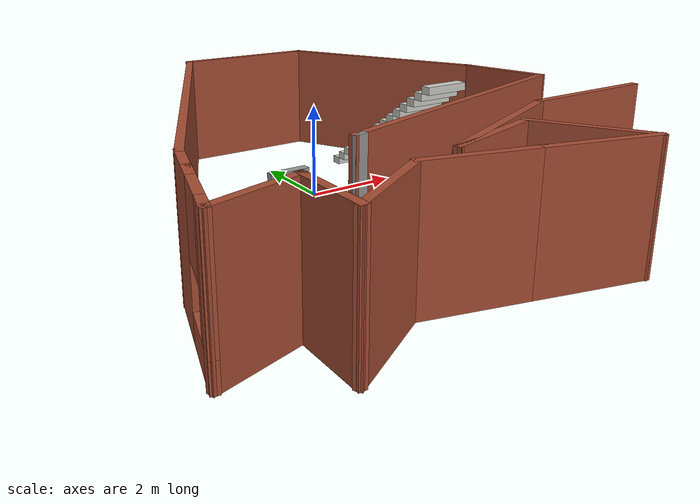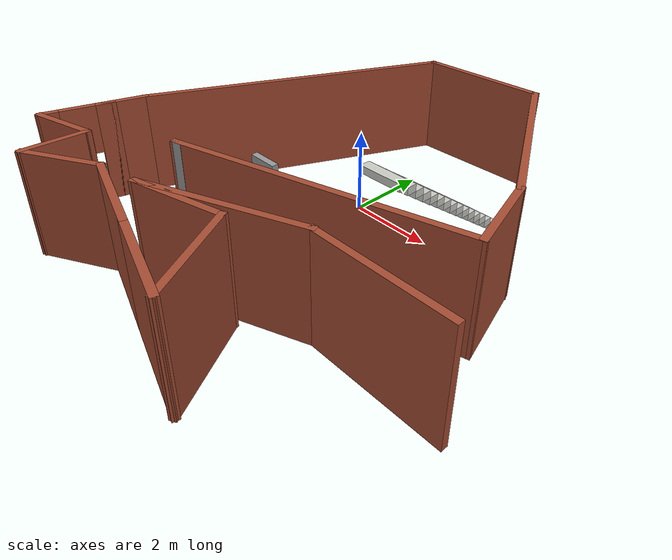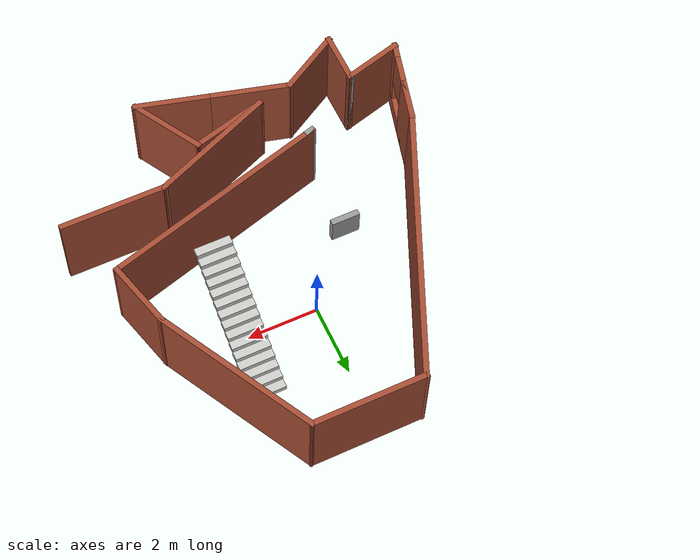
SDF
<?xml version='1.0'?>
<sdf version='1.7'>
  <model name='wall'>
    <pose>0.322681 -1.26251 0 0 -0 0</pose>
    <link name='Stairs_0'>
      <visual name='Stairs_0_Visual_0'>
        <pose>1.86382 2.90884 0.083333 0 -0 0</pose>
        <geometry>
          <box>
            <size>1 0.233333 0.166667</size>
          </box>
        </geometry>
        <material>
          <script>
            <uri>file://media/materials/scripts/gazebo.material</uri>
            <name>Gazebo/CeilingTiled</name>
          </script>
          <ambient>1 1 1 1</ambient>
        </material>
        <meta>
          <layer>0</layer>
        </meta>
      </visual>
      <collision name='Stairs_0_Collision_0'>
        <geometry>
          <box>
            <size>1 0.233333 0.166667</size>
          </box>
        </geometry>
        <pose>1.86382 2.90884 0.083333 0 -0 0</pose>
      </collision>
      <visual name='Stairs_0_Visual_1'>
        <pose>1.86382 2.67551 0.25 0 -0 0</pose>
        <geometry>
          <box>
            <size>1 0.233333 0.166667</size>
          </box>
        </geometry>
        <material>
          <script>
            <uri>file://media/materials/scripts/gazebo.material</uri>
            <name>Gazebo/CeilingTiled</name>
          </script>
          <ambient>1 1 1 1</ambient>
        </material>
        <meta>
          <layer>0</layer>
        </meta>
      </visual>
      <collision name='Stairs_0_Collision_1'>
        <geometry>
          <box>
            <size>1 0.233333 0.166667</size>
          </box>
        </geometry>
        <pose>1.86382 2.67551 0.25 0 -0 0</pose>
      </collision>
      <visual name='Stairs_0_Visual_2'>
        <pose>1.86382 2.44218 0.416667 0 -0 0</pose>
        <geometry>
          <box>
            <size>1 0.233333 0.166667</size>
          </box>
        </geometry>
        <material>
          <script>
            <uri>file://media/materials/scripts/gazebo.material</uri>
            <name>Gazebo/CeilingTiled</name>
          </script>
          <ambient>1 1 1 1</ambient>
        </material>
        <meta>
          <layer>0</layer>
        </meta>
      </visual>
      <collision name='Stairs_0_Collision_2'>
        <geometry>
          <box>
            <size>1 0.233333 0.166667</size>
          </box>
        </geometry>
        <pose>1.86382 2.44218 0.416667 0 -0 0</pose>
      </collision>
      <visual name='Stairs_0_Visual_3'>
        <pose>1.86382 2.20884 0.583333 0 -0 0</pose>
        <geometry>
          <box>
            <size>1 0.233333 0.166667</size>
          </box>
        </geometry>
        <material>
          <script>
            <uri>file://media/materials/scripts/gazebo.material</uri>
            <name>Gazebo/CeilingTiled</name>
          </script>
          <ambient>1 1 1 1</ambient>
        </material>
        <meta>
          <layer>0</layer>
        </meta>
      </visual>
      <collision name='Stairs_0_Collision_3'>
        <geometry>
          <box>
            <size>1 0.233333 0.166667</size>
          </box>
        </geometry>
        <pose>1.86382 2.20884 0.583333 0 -0 0</pose>
      </collision>
      <visual name='Stairs_0_Visual_4'>
        <pose>1.86382 1.97551 0.75 0 -0 0</pose>
        <geometry>
          <box>
            <size>1 0.233333 0.166667</size>
          </box>
        </geometry>
        <material>
          <script>
            <uri>file://media/materials/scripts/gazebo.material</uri>
            <name>Gazebo/CeilingTiled</name>
          </script>
          <ambient>1 1 1 1</ambient>
        </material>
        <meta>
          <layer>0</layer>
        </meta>
      </visual>
      <collision name='Stairs_0_Collision_4'>
        <geometry>
          <box>
            <size>1 0.233333 0.166667</size>
          </box>
        </geometry>
        <pose>1.86382 1.97551 0.75 0 -0 0</pose>
      </collision>
      <visual name='Stairs_0_Visual_5'>
        <pose>1.86382 1.74218 0.916667 0 -0 0</pose>
        <geometry>
          <box>
            <size>1 0.233333 0.166667</size>
          </box>
        </geometry>
        <material>
          <script>
            <uri>file://media/materials/scripts/gazebo.material</uri>
            <name>Gazebo/CeilingTiled</name>
          </script>
          <ambient>1 1 1 1</ambient>
        </material>
        <meta>
          <layer>0</layer>
        </meta>
      </visual>
      <collision name='Stairs_0_Collision_5'>
        <geometry>
          <box>
            <size>1 0.233333 0.166667</size>
          </box>
        </geometry>
        <pose>1.86382 1.74218 0.916667 0 -0 0</pose>
      </collision>
      <visual name='Stairs_0_Visual_6'>
        <pose>1.86382 1.50884 1.08333 0 -0 0</pose>
        <geometry>
          <box>
            <size>1 0.233333 0.166667</size>
          </box>
        </geometry>
        <material>
          <script>
            <uri>file://media/materials/scripts/gazebo.material</uri>
            <name>Gazebo/CeilingTiled</name>
          </script>
          <ambient>1 1 1 1</ambient>
        </material>
        <meta>
          <layer>0</layer>
        </meta>
      </visual>
      <collision name='Stairs_0_Collision_6'>
        <geometry>
          <box>
            <size>1 0.233333 0.166667</size>
          </box>
        </geometry>
        <pose>1.86382 1.50884 1.08333 0 -0 0</pose>
      </collision>
      <visual name='Stairs_0_Visual_7'>
        <pose>1.86382 1.27551 1.25 0 -0 0</pose>
        <geometry>
          <box>
            <size>1 0.233333 0.166667</size>
          </box>
        </geometry>
        <material>
          <script>
            <uri>file://media/materials/scripts/gazebo.material</uri>
            <name>Gazebo/CeilingTiled</name>
          </script>
          <ambient>1 1 1 1</ambient>
        </material>
        <meta>
          <layer>0</layer>
        </meta>
      </visual>
      <collision name='Stairs_0_Collision_7'>
        <geometry>
          <box>
            <size>1 0.233333 0.166667</size>
          </box>
        </geometry>
        <pose>1.86382 1.27551 1.25 0 -0 0</pose>
      </collision>
      <visual name='Stairs_0_Visual_8'>
        <pose>1.86382 1.04218 1.41667 0 -0 0</pose>
        <geometry>
          <box>
            <size>1 0.233333 0.166667</size>
          </box>
        </geometry>
        <material>
          <script>
            <uri>file://media/materials/scripts/gazebo.material</uri>
            <name>Gazebo/CeilingTiled</name>
          </script>
          <ambient>1 1 1 1</ambient>
        </material>
        <meta>
          <layer>0</layer>
        </meta>
      </visual>
      <collision name='Stairs_0_Collision_8'>
        <geometry>
          <box>
            <size>1 0.233333 0.166667</size>
          </box>
        </geometry>
        <pose>1.86382 1.04218 1.41667 0 -0 0</pose>
      </collision>
      <visual name='Stairs_0_Visual_9'>
        <pose>1.86382 0.808841 1.58333 0 -0 0</pose>
        <geometry>
          <box>
            <size>1 0.233333 0.166667</size>
          </box>
        </geometry>
        <material>
          <script>
            <uri>file://media/materials/scripts/gazebo.material</uri>
            <name>Gazebo/CeilingTiled</name>
          </script>
          <ambient>1 1 1 1</ambient>
        </material>
        <meta>
          <layer>0</layer>
        </meta>
      </visual>
      <collision name='Stairs_0_Collision_9'>
        <geometry>
          <box>
            <size>1 0.233333 0.166667</size>
          </box>
        </geometry>
        <pose>1.86382 0.808841 1.58333 0 -0 0</pose>
      </collision>
      <visual name='Stairs_0_Visual_10'>
        <pose>1.86382 0.575508 1.75 0 -0 0</pose>
        <geometry>
          <box>
            <size>1 0.233333 0.166667</size>
          </box>
        </geometry>
        <material>
          <script>
            <uri>file://media/materials/scripts/gazebo.material</uri>
            <name>Gazebo/CeilingTiled</name>
          </script>
          <ambient>1 1 1 1</ambient>
        </material>
        <meta>
          <layer>0</layer>
        </meta>
      </visual>
      <collision name='Stairs_0_Collision_10'>
        <geometry>
          <box>
            <size>1 0.233333 0.166667</size>
          </box>
        </geometry>
        <pose>1.86382 0.575508 1.75 0 -0 0</pose>
      </collision>
      <visual name='Stairs_0_Visual_11'>
        <pose>1.86382 0.342175 1.91667 0 -0 0</pose>
        <geometry>
          <box>
            <size>1 0.233333 0.166667</size>
          </box>
        </geometry>
        <material>
          <script>
            <uri>file://media/materials/scripts/gazebo.material</uri>
            <name>Gazebo/CeilingTiled</name>
          </script>
          <ambient>1 1 1 1</ambient>
        </material>
        <meta>
          <layer>0</layer>
        </meta>
      </visual>
      <collision name='Stairs_0_Collision_11'>
        <geometry>
          <box>
            <size>1 0.233333 0.166667</size>
          </box>
        </geometry>
        <pose>1.86382 0.342175 1.91667 0 -0 0</pose>
      </collision>
      <visual name='Stairs_0_Visual_12'>
        <pose>1.86382 0.108841 2.08333 0 -0 0</pose>
        <geometry>
          <box>
            <size>1 0.233333 0.166667</size>
          </box>
        </geometry>
        <material>
          <script>
            <uri>file://media/materials/scripts/gazebo.material</uri>
            <name>Gazebo/CeilingTiled</name>
          </script>
          <ambient>1 1 1 1</ambient>
        </material>
        <meta>
          <layer>0</layer>
        </meta>
      </visual>
      <collision name='Stairs_0_Collision_12'>
        <geometry>
          <box>
            <size>1 0.233333 0.166667</size>
          </box>
        </geometry>
        <pose>1.86382 0.108841 2.08333 0 -0 0</pose>
      </collision>
      <visual name='Stairs_0_Visual_13'>
        <pose>1.86382 -0.124492 2.25 0 -0 0</pose>
        <geometry>
          <box>
            <size>1 0.233333 0.166667</size>
          </box>
        </geometry>
        <material>
          <script>
            <uri>file://media/materials/scripts/gazebo.material</uri>
            <name>Gazebo/CeilingTiled</name>
          </script>
          <ambient>1 1 1 1</ambient>
        </material>
        <meta>
          <layer>0</layer>
        </meta>
      </visual>
      <collision name='Stairs_0_Collision_13'>
        <geometry>
          <box>
            <size>1 0.233333 0.166667</size>
          </box>
        </geometry>
        <pose>1.86382 -0.124492 2.25 0 -0 0</pose>
      </collision>
      <visual name='Stairs_0_Visual_14'>
        <pose>1.86382 -0.357825 2.41667 0 -0 0</pose>
        <geometry>
          <box>
            <size>1 0.233333 0.166667</size>
          </box>
        </geometry>
        <material>
          <script>
            <uri>file://media/materials/scripts/gazebo.material</uri>
            <name>Gazebo/CeilingTiled</name>
          </script>
          <ambient>1 1 1 1</ambient>
        </material>
        <meta>
          <layer>0</layer>
        </meta>
      </visual>
      <collision name='Stairs_0_Collision_14'>
        <geometry>
          <box>
            <size>1 0.233333 0.166667</size>
          </box>
        </geometry>
        <pose>1.86382 -0.357825 2.41667 0 -0 0</pose>
      </collision>
    </link>
    <link name='Wall_0'>
      <collision name='Wall_0_Collision'>
        <geometry>
          <box>
            <size>0.3 0.15 2.5</size>
          </box>
        </geometry>
        <pose>0 0 1.25 0 -0 0</pose>
      </collision>
      <visual name='Wall_0_Visual'>
        <pose>0 0 1.25 0 -0 0</pose>
        <geometry>
          <box>
            <size>0.3 0.15 2.5</size>
          </box>
        </geometry>
        <material>
          <script>
            <uri>file://media/materials/scripts/gazebo.material</uri>
            <name>Gazebo/Grey</name>
          </script>
          <ambient>1 1 1 1</ambient>
        </material>
        <meta>
          <layer>0</layer>
        </meta>
      </visual>
      <pose>-1.86513 -2.5169 0 0 -0 -2.87979</pose>
    </link>
    <link name='Wall_1'>
      <collision name='Wall_1_Collision'>
        <geometry>
          <box>
            <size>6.69663 0.15 2.5</size>
          </box>
        </geometry>
        <pose>0 0 1.25 0 -0 0</pose>
      </collision>
      <visual name='Wall_1_Visual'>
        <pose>0 0 1.25 0 -0 0</pose>
        <geometry>
          <box>
            <size>6.69663 0.15 2.5</size>
          </box>
        </geometry>
        <material>
          <script>
            <uri>file://media/materials/scripts/gazebo.material</uri>
            <name>Gazebo/Bricks</name>
          </script>
          <ambient>1 1 1 1</ambient>
        </material>
        <meta>
          <layer>0</layer>
        </meta>
      </visual>
      <pose>1.21243 -1.64631 0 0 -0 0.275362</pose>
    </link>
    <link name='Wall_10'>
      <collision name='Wall_10_Collision'>
        <geometry>
          <box>
            <size>2 0.15 2.5</size>
          </box>
        </geometry>
        <pose>0 0 1.25 0 -0 0</pose>
      </collision>
      <visual name='Wall_10_Visual'>
        <pose>0 0 1.25 0 -0 0</pose>
        <geometry>
          <box>
            <size>2 0.15 2.5</size>
          </box>
        </geometry>
        <material>
          <script>
            <uri>file://media/materials/scripts/gazebo.material</uri>
            <name>Gazebo/Bricks</name>
          </script>
          <ambient>1 1 1 1</ambient>
        </material>
        <meta>
          <layer>0</layer>
        </meta>
      </visual>
      <pose>-2.80276 -4.55519 0 0 -0 0.523599</pose>
    </link>
    <link name='Wall_11'>
      <collision name='Wall_11_Collision'>
        <geometry>
          <box>
            <size>2.25 0.15 2.5</size>
          </box>
        </geometry>
        <pose>0 0 1.25 0 -0 0</pose>
      </collision>
      <visual name='Wall_11_Visual'>
        <pose>0 0 1.25 0 -0 0</pose>
        <geometry>
          <box>
            <size>2.25 0.15 2.5</size>
          </box>
        </geometry>
        <material>
          <script>
            <uri>file://media/materials/scripts/gazebo.material</uri>
            <name>Gazebo/Bricks</name>
          </script>
          <ambient>1 1 1 1</ambient>
        </material>
        <meta>
          <layer>0</layer>
        </meta>
      </visual>
      <pose>-0.987461 -4.36444 0 0 -0 -0.261799</pose>
    </link>
    <link name='Wall_12'>
      <collision name='Wall_12_Collision'>
        <geometry>
          <box>
            <size>2.25 0.15 2.5</size>
          </box>
        </geometry>
        <pose>0 0 1.25 0 -0 0</pose>
      </collision>
      <visual name='Wall_12_Visual'>
        <pose>0 0 1.25 0 -0 0</pose>
        <geometry>
          <box>
            <size>2.25 0.15 2.5</size>
          </box>
        </geometry>
        <material>
          <script>
            <uri>file://media/materials/scripts/gazebo.material</uri>
            <name>Gazebo/Bricks</name>
          </script>
          <ambient>1 1 1 1</ambient>
        </material>
        <meta>
          <layer>0</layer>
        </meta>
      </visual>
      <pose>1.04098 -4.90796 0 0 -0 -0.261799</pose>
    </link>
    <link name='Wall_13'>
      <collision name='Wall_13_Collision'>
        <geometry>
          <box>
            <size>2.25 0.15 2.5</size>
          </box>
        </geometry>
        <pose>0 0 1.25 0 -0 0</pose>
      </collision>
      <visual name='Wall_13_Visual'>
        <pose>0 0 1.25 0 -0 0</pose>
        <geometry>
          <box>
            <size>2.25 0.15 2.5</size>
          </box>
        </geometry>
        <material>
          <script>
            <uri>file://media/materials/scripts/gazebo.material</uri>
            <name>Gazebo/Bricks</name>
          </script>
          <ambient>1 1 1 1</ambient>
        </material>
        <meta>
          <layer>0</layer>
        </meta>
      </visual>
      <pose>1.53021 -4.2704 0 0 -0 2.0944</pose>
    </link>
    <link name='Wall_14'>
      <collision name='Wall_14_Collision'>
        <geometry>
          <box>
            <size>2.25 0.15 2.5</size>
          </box>
        </geometry>
        <pose>0 0 1.25 0 -0 0</pose>
      </collision>
      <visual name='Wall_14_Visual'>
        <pose>0 0 1.25 0 -0 0</pose>
        <geometry>
          <box>
            <size>2.25 0.15 2.5</size>
          </box>
        </geometry>
        <material>
          <script>
            <uri>file://media/materials/scripts/gazebo.material</uri>
            <name>Gazebo/Bricks</name>
          </script>
          <ambient>1 1 1 1</ambient>
        </material>
        <meta>
          <layer>0</layer>
        </meta>
      </visual>
      <pose>-0.009017 -3.63283 0 0 -0 -2.87979</pose>
    </link>
    <link name='Wall_15'>
      <collision name='Wall_15_Collision'>
        <geometry>
          <box>
            <size>3.77408 0.15 2.5</size>
          </box>
        </geometry>
        <pose>0 0 1.25 0 -0 0</pose>
      </collision>
      <visual name='Wall_15_Visual'>
        <pose>0 0 1.25 0 -0 0</pose>
        <geometry>
          <box>
            <size>3.77408 0.15 2.5</size>
          </box>
        </geometry>
        <material>
          <script>
            <uri>file://media/materials/scripts/gazebo.material</uri>
            <name>Gazebo/Bricks</name>
          </script>
          <ambient>1 1 1 1</ambient>
        </material>
        <meta>
          <layer>0</layer>
        </meta>
      </visual>
      <pose>0.651464 -3.21259 0 0 -0 0.39184</pose>
    </link>
    <link name='Wall_16'>
      <collision name='Wall_16_Collision'>
        <geometry>
          <box>
            <size>3 0.15 2.5</size>
          </box>
        </geometry>
        <pose>0 0 1.25 0 -0 0</pose>
      </collision>
      <visual name='Wall_16_Visual'>
        <pose>0 0 1.25 0 -0 0</pose>
        <geometry>
          <box>
            <size>3 0.15 2.5</size>
          </box>
        </geometry>
        <material>
          <script>
            <uri>file://media/materials/scripts/gazebo.material</uri>
            <name>Gazebo/Bricks</name>
          </script>
          <ambient>1 1 1 1</ambient>
        </material>
        <meta>
          <layer>0</layer>
        </meta>
      </visual>
      <pose>3.75117 -2.52059 0 0 -0 0</pose>
    </link>
    <link name='Wall_2'>
      <collision name='Wall_2_Collision'>
        <geometry>
          <box>
            <size>2 0.15 2.5</size>
          </box>
        </geometry>
        <pose>0 0 1.25 0 -0 0</pose>
      </collision>
      <visual name='Wall_2_Visual'>
        <pose>0 0 1.25 0 -0 0</pose>
        <geometry>
          <box>
            <size>2 0.15 2.5</size>
          </box>
        </geometry>
        <material>
          <script>
            <uri>file://media/materials/scripts/gazebo.material</uri>
            <name>Gazebo/Bricks</name>
          </script>
          <ambient>1 1 1 1</ambient>
        </material>
        <meta>
          <layer>0</layer>
        </meta>
      </visual>
      <pose>4.12302 0.137167 0 0 -0 1.8326</pose>
    </link>
    <link name='Wall_3'>
      <collision name='Wall_3_Collision'>
        <geometry>
          <box>
            <size>4.85813 0.15 2.5</size>
          </box>
        </geometry>
        <pose>0 0 1.25 0 -0 0</pose>
      </collision>
      <visual name='Wall_3_Visual'>
        <pose>0 0 1.25 0 -0 0</pose>
        <geometry>
          <box>
            <size>4.85813 0.15 2.5</size>
          </box>
        </geometry>
        <material>
          <script>
            <uri>file://media/materials/scripts/gazebo.material</uri>
            <name>Gazebo/Bricks</name>
          </script>
          <ambient>1 1 1 1</ambient>
        </material>
        <meta>
          <layer>0</layer>
        </meta>
      </visual>
      <pose>2.77186 3.10565 0 0 -0 2.06266</pose>
    </link>
    <link name='Wall_4'>
      <collision name='Wall_4_Collision'>
        <geometry>
          <box>
            <size>3.25 0.15 2.5</size>
          </box>
        </geometry>
        <pose>0 0 1.25 0 -0 0</pose>
      </collision>
      <visual name='Wall_4_Visual'>
        <pose>0 0 1.25 0 -0 0</pose>
        <geometry>
          <box>
            <size>3.25 0.15 2.5</size>
          </box>
        </geometry>
        <material>
          <script>
            <uri>file://media/materials/scripts/gazebo.material</uri>
            <name>Gazebo/Bricks</name>
          </script>
          <ambient>1 1 1 1</ambient>
        </material>
        <meta>
          <layer>0</layer>
        </meta>
      </visual>
      <pose>0.110114 5.18065 0 0 -0 3.14159</pose>
    </link>
    <link name='Wall_5'>
      <collision name='Wall_5_Collision'>
        <geometry>
          <box>
            <size>7.80342 0.15 2.5</size>
          </box>
        </geometry>
        <pose>0 0 1.25 0 -0 0</pose>
      </collision>
      <visual name='Wall_5_Visual'>
        <pose>0 0 1.25 0 -0 0</pose>
        <geometry>
          <box>
            <size>7.80342 0.15 2.5</size>
          </box>
        </geometry>
        <material>
          <script>
            <uri>file://media/materials/scripts/gazebo.material</uri>
            <name>Gazebo/Bricks</name>
          </script>
          <ambient>1 1 1 1</ambient>
        </material>
        <meta>
          <layer>0</layer>
        </meta>
      </visual>
      <pose>-2.99549 1.68439 0 0 -0 -1.98943</pose>
    </link>
    <link name='Wall_6'>
      <pose>-4.8552 -2.94683 0 0 -0 -1.8326</pose>
      <visual name='Wall_6_Visual_0'>
        <pose>-0.635959 0 1.25 0 -0 0</pose>
        <geometry>
          <box>
            <size>1.22808 0.15 2.5</size>
          </box>
        </geometry>
        <material>
          <script>
            <uri>file://media/materials/scripts/gazebo.material</uri>
            <name>Gazebo/Bricks</name>
          </script>
          <ambient>1 1 1 1</ambient>
        </material>
        <meta>
          <layer>0</layer>
        </meta>
      </visual>
      <collision name='Wall_6_Collision_0'>
        <geometry>
          <box>
            <size>1.22808 0.15 2.5</size>
          </box>
        </geometry>
        <pose>-0.635959 0 1.25 0 -0 0</pose>
      </collision>
      <visual name='Wall_6_Visual_1'>
        <pose>-0.252038 0 1.25 0 -0 0</pose>
        <geometry>
          <box>
            <size>0.460241 0.15 2.5</size>
          </box>
        </geometry>
        <material>
          <script>
            <uri>file://media/materials/scripts/gazebo.material</uri>
            <name>Gazebo/Bricks</name>
          </script>
          <ambient>1 1 1 1</ambient>
        </material>
        <meta>
          <layer>0</layer>
        </meta>
      </visual>
      <collision name='Wall_6_Collision_1'>
        <geometry>
          <box>
            <size>0.460241 0.15 2.5</size>
          </box>
        </geometry>
        <pose>-0.252038 0 1.25 0 -0 0</pose>
      </collision>
      <visual name='Wall_6_Visual_2'>
        <pose>0.614041 0 0.25 0 -0 0</pose>
        <geometry>
          <box>
            <size>1.27192 0.15 0.5</size>
          </box>
        </geometry>
        <material>
          <script>
            <uri>file://media/materials/scripts/gazebo.material</uri>
            <name>Gazebo/Bricks</name>
          </script>
          <ambient>1 1 1 1</ambient>
        </material>
        <meta>
          <layer>0</layer>
        </meta>
      </visual>
      <collision name='Wall_6_Collision_2'>
        <geometry>
          <box>
            <size>1.27192 0.15 0.5</size>
          </box>
        </geometry>
        <pose>0.614041 0 0.25 0 -0 0</pose>
      </collision>
      <visual name='Wall_6_Visual_3'>
        <pose>0.614041 0 0.25 0 -0 0</pose>
        <geometry>
          <box>
            <size>1.27192 0.15 0.5</size>
          </box>
        </geometry>
        <material>
          <script>
            <uri>file://media/materials/scripts/gazebo.material</uri>
            <name>Gazebo/Bricks</name>
          </script>
          <ambient>1 1 1 1</ambient>
        </material>
        <meta>
          <layer>0</layer>
        </meta>
      </visual>
      <collision name='Wall_6_Collision_3'>
        <geometry>
          <box>
            <size>1.27192 0.15 0.5</size>
          </box>
        </geometry>
        <pose>0.614041 0 0.25 0 -0 0</pose>
      </collision>
      <visual name='Wall_6_Visual_4'>
        <pose>1.01404 0 1.5 0 -0 0</pose>
        <geometry>
          <box>
            <size>0.471918 0.15 2</size>
          </box>
        </geometry>
        <material>
          <script>
            <uri>file://media/materials/scripts/gazebo.material</uri>
            <name>Gazebo/Bricks</name>
          </script>
          <ambient>1 1 1 1</ambient>
        </material>
        <meta>
          <layer>0</layer>
        </meta>
      </visual>
      <collision name='Wall_6_Collision_4'>
        <geometry>
          <box>
            <size>0.471918 0.15 2</size>
          </box>
        </geometry>
        <pose>1.01404 0 1.5 0 -0 0</pose>
      </collision>
      <visual name='Wall_6_Visual_5'>
        <pose>1.01404 0 1.5 0 -0 0</pose>
        <geometry>
          <box>
            <size>0.471918 0.15 2</size>
          </box>
        </geometry>
        <material>
          <script>
            <uri>file://media/materials/scripts/gazebo.material</uri>
            <name>Gazebo/Bricks</name>
          </script>
          <ambient>1 1 1 1</ambient>
        </material>
        <meta>
          <layer>0</layer>
        </meta>
      </visual>
      <collision name='Wall_6_Collision_5'>
        <geometry>
          <box>
            <size>0.471918 0.15 2</size>
          </box>
        </geometry>
        <pose>1.01404 0 1.5 0 -0 0</pose>
      </collision>
      <visual name='Wall_6_Visual_6'>
        <pose>0.378082 0 1.9 0 -0 0</pose>
        <geometry>
          <box>
            <size>0.8 0.15 1.2</size>
          </box>
        </geometry>
        <material>
          <script>
            <uri>file://media/materials/scripts/gazebo.material</uri>
            <name>Gazebo/Bricks</name>
          </script>
          <ambient>1 1 1 1</ambient>
        </material>
        <meta>
          <layer>0</layer>
        </meta>
      </visual>
      <collision name='Wall_6_Collision_6'>
        <geometry>
          <box>
            <size>0.8 0.15 1.2</size>
          </box>
        </geometry>
        <pose>0.378082 0 1.9 0 -0 0</pose>
      </collision>
      <visual name='Wall_6_Visual_7'>
        <pose>0.378082 0 1.9 0 -0 0</pose>
        <geometry>
          <box>
            <size>0.8 0.15 1.2</size>
          </box>
        </geometry>
        <material>
          <script>
            <uri>file://media/materials/scripts/gazebo.material</uri>
            <name>Gazebo/Bricks</name>
          </script>
          <ambient>1 1 1 1</ambient>
        </material>
        <meta>
          <layer>0</layer>
        </meta>
      </visual>
      <collision name='Wall_6_Collision_7'>
        <geometry>
          <box>
            <size>0.8 0.15 1.2</size>
          </box>
        </geometry>
        <pose>0.378082 0 1.9 0 -0 0</pose>
      </collision>
    </link>
    <link name='Wall_7'>
      <collision name='Wall_7_Collision'>
        <geometry>
          <box>
            <size>1.75 0.15 2.5</size>
          </box>
        </geometry>
        <pose>0 0 1.25 0 -0 0</pose>
      </collision>
      <visual name='Wall_7_Visual'>
        <pose>0 0 1.25 0 -0 0</pose>
        <geometry>
          <box>
            <size>1.75 0.15 2.5</size>
          </box>
        </geometry>
        <material>
          <script>
            <uri>file://media/materials/scripts/gazebo.material</uri>
            <name>Gazebo/Bricks</name>
          </script>
          <ambient>1 1 1 1</ambient>
        </material>
        <meta>
          <layer>0</layer>
        </meta>
      </visual>
      <pose>-4.38657 -3.87474 0 0 -0 0.261799</pose>
    </link>
    <link name='Wall_8'>
      <collision name='Wall_8_Collision'>
        <geometry>
          <box>
            <size>0.16 0.15 2.5</size>
          </box>
        </geometry>
        <pose>0 0 1.25 0 -0 0</pose>
      </collision>
      <visual name='Wall_8_Visual'>
        <pose>0 0 1.25 0 -0 0</pose>
        <geometry>
          <box>
            <size>0.16 0.15 2.5</size>
          </box>
        </geometry>
        <material>
          <script>
            <uri>file://media/materials/scripts/gazebo.material</uri>
            <name>Gazebo/Grey</name>
          </script>
          <ambient>1 1 1 1</ambient>
        </material>
        <meta>
          <layer>0</layer>
        </meta>
      </visual>
      <pose>-3.60883 -3.66769 0 0 -0 0</pose>
    </link>
    <link name='Wall_9'>
      <collision name='Wall_9_Collision'>
        <geometry>
          <box>
            <size>1.5 0.15 2.5</size>
          </box>
        </geometry>
        <pose>0 0 1.25 0 -0 0</pose>
      </collision>
      <visual name='Wall_9_Visual'>
        <pose>0 0 1.25 0 -0 0</pose>
        <geometry>
          <box>
            <size>1.5 0.15 2.5</size>
          </box>
        </geometry>
        <material>
          <script>
            <uri>file://media/materials/scripts/gazebo.material</uri>
            <name>Gazebo/Bricks</name>
          </script>
          <ambient>1 1 1 1</ambient>
        </material>
        <meta>
          <layer>0</layer>
        </meta>
      </visual>
      <pose>-3.60383 -4.34269 0 0 -0 -1.5708</pose>
    </link>
    <link name='Window_0'>
      <collision name='Window_0_Collision'>
        <geometry>
          <box>
            <size>0.8 0.17 0.8</size>
          </box>
        </geometry>
        <pose>0 0 0.4 0 -0 0</pose>
      </collision>
      <visual name='Window_0_Visual'>
        <pose>0 0 0.4 0 -0 0</pose>
        <geometry>
          <box>
            <size>0.8 0.17 0.8</size>
          </box>
        </geometry>
        <material>
          <script>
            <uri>file://media/materials/scripts/gazebo.material</uri>
            <name>Gazebo/Grey</name>
          </script>
        </material>
      </visual>
      <pose>-1.89268 -0.347492 0.5 0 -0 0</pose>
    </link>
    <static>1</static>
  </model>
</sdf>
